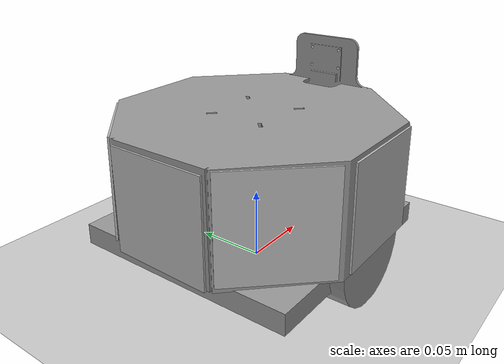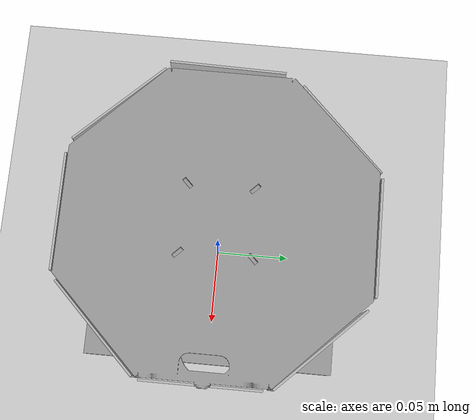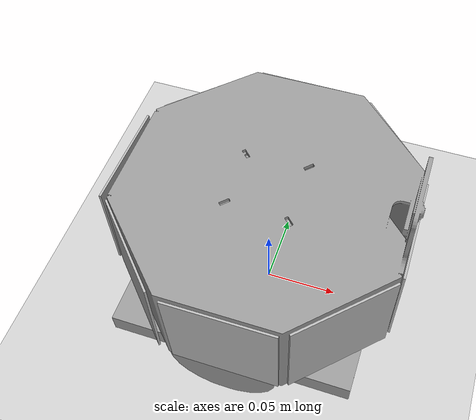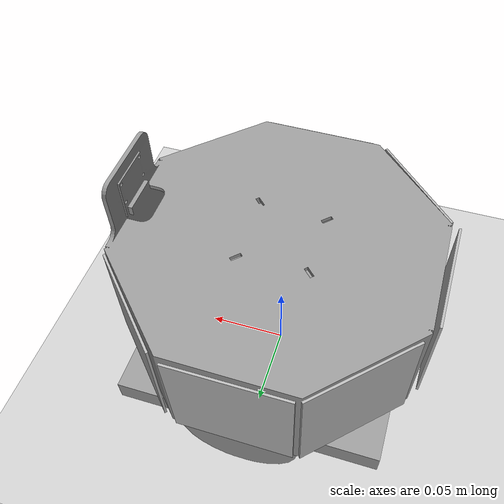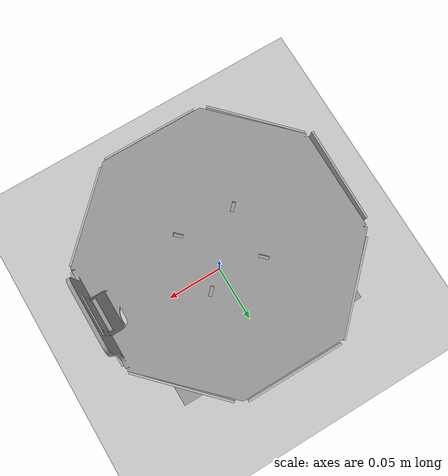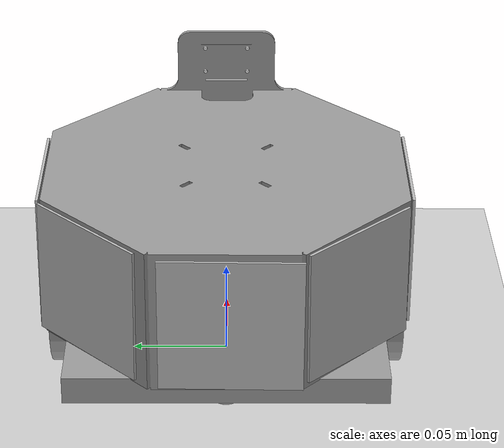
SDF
<?xml version="1.0"?>
<sdf version="1.4">
  <world name="default">

  	    <include>
			<uri>model://sun</uri>
		</include>

		<include>
			<uri>model://ground_plane</uri>
		</include>

		<include>
			<uri>model://Brook</uri>
			<pose>0 0 0 0 0 0</pose>
		</include>

		<gui fullscreen='0'>
      		<camera name='user_camera'>
        		<pose>4.927360 -4.376610 3.740080 0.000000 0.275643 2.356190</pose>
       			 <view_controller>orbit</view_controller>
     		 </camera>
   		 </gui>

  </world>
</sdf>

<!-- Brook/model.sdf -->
<sdf version='1.6'>
  <model name='Brook'>
    <link name='chassis'>
      <pose frame=''>-0.001509 0 0.027 0 -0 0</pose>
      <inertial>
        <mass>0.00251652</mass>
        <inertia>
          <ixx>6.31e-06</ixx>
          <ixy>0</ixy>
          <ixz>0</ixz>
          <iyy>0.00020976</iyy>
          <iyz>0</iyz>
          <izz>0.00021598</izz>
        </inertia>
        <pose frame=''>0 0 0 0 -0 0</pose>
      </inertial>
      <self_collide>0</self_collide>
      <kinematic>0</kinematic>
      <visual name='visual'>
        <pose frame=''>0 0 0 0 -0 0</pose>
        <geometry>
          <box>
            <size>0.164 0.164 0.014559</size>
          </box>
        </geometry>
        <material>
          <lighting>1</lighting>
          <script>
            <uri>file://media/materials/scripts/gazebo.material</uri>
            <name>Gazebo/Grey</name>
          </script>
          <ambient>0.3 0.3 0.3 1</ambient>
          <diffuse>0.7 0.7 0.7 1</diffuse>
          <specular>0.01 0.01 0.01 1</specular>
          <emissive>0 0 0 1</emissive>
          <shader type='vertex'>
            <normal_map>__default__</normal_map>
          </shader>
        </material>
        <cast_shadows>1</cast_shadows>
        <transparency>0</transparency>
      </visual>
      <collision name='collision'>
        <laser_retro>0</laser_retro>
        <max_contacts>10</max_contacts>
        <pose frame=''>0 0 0 0 -0 0</pose>
        <geometry>
          <box>
            <size>0.164 0.164 0.014559</size>
          </box>
        </geometry>
        <surface>
          <friction>
            <ode>
              <mu>1</mu>
              <mu2>1</mu2>
              <fdir1>0 0 0</fdir1>
              <slip1>0</slip1>
              <slip2>0</slip2>
            </ode>
            <torsional>
              <coefficient>1</coefficient>
              <patch_radius>0</patch_radius>
              <surface_radius>0</surface_radius>
              <use_patch_radius>1</use_patch_radius>
              <ode>
                <slip>0</slip>
              </ode>
            </torsional>
          </friction>
          <bounce>
            <restitution_coefficient>0</restitution_coefficient>
            <threshold>1e+06</threshold>
          </bounce>
          <contact>
            <collide_without_contact>0</collide_without_contact>
            <collide_without_contact_bitmask>1</collide_without_contact_bitmask>
            <collide_bitmask>1</collide_bitmask>
            <ode>
              <soft_cfm>0</soft_cfm>
              <soft_erp>0.2</soft_erp>
              <kp>1e+13</kp>
              <kd>1</kd>
              <max_vel>0.01</max_vel>
              <min_depth>0</min_depth>
            </ode>
            <bullet>
              <split_impulse>1</split_impulse>
              <split_impulse_penetration_threshold>-0.01</split_impulse_penetration_threshold>
              <soft_cfm>0</soft_cfm>
              <soft_erp>0.2</soft_erp>
              <kp>1e+13</kp>
              <kd>1</kd>
            </bullet>
          </contact>
        </surface>
      </collision>
    </link>
    <link name='33'>
      <pose frame=''>0.094422 -0.0013 0.037391 -2e-06 -0.011087 2e-06</pose>
      <inertial>
        <mass>0.00001</mass>
        <inertia>
          <ixx>0.166667</ixx>
          <ixy>0</ixy>
          <ixz>0</ixz>
          <iyy>0.166667</iyy>
          <iyz>0</iyz>
          <izz>0.166667</izz>
        </inertia>
        <pose frame=''>0 0 0 0 -0 0</pose>
      </inertial>
      <self_collide>0</self_collide>
      <kinematic>0</kinematic>
      <gravity>1</gravity>
      <visual name='visual'>
        <pose frame=''>0 0 0 0 -0 0</pose>
        <geometry>
          <mesh>
            <uri>model://brook_id_33/meshes/Brook_ID_33.dae</uri>
            <scale>0.142 0.142 0.142</scale>
          </mesh>
        </geometry>
        <cast_shadows>0</cast_shadows>
        <transparency>0</transparency>
        <material>
          <shader type='vertex'>
            <normal_map>__default__</normal_map>
          </shader>
          <emissive>0 0 0 1</emissive>
        </material>
      </visual>
      <collision name='collision'>
        <laser_retro>0</laser_retro>
        <max_contacts>10</max_contacts>
        <pose frame=''>0 0 0 0 -0 0</pose>
        <geometry>
          <mesh>
            <uri>/home/robot/catkin_ws/src/robot_description/models/brook_id_33/meshes/Brook_ID_33.dae</uri>
          </mesh>
        </geometry>
        <surface>
          <friction>
            <ode>
              <mu>0</mu>
              <mu2>0</mu2>
              <fdir1>0 0 0</fdir1>
              <slip1>0</slip1>
              <slip2>0</slip2>
            </ode>
            <torsional>
              <coefficient>1</coefficient>
              <patch_radius>0</patch_radius>
              <surface_radius>0</surface_radius>
              <use_patch_radius>1</use_patch_radius>
              <ode>
                <slip>0</slip>
              </ode>
            </torsional>
          </friction>
          <bounce>
            <restitution_coefficient>0</restitution_coefficient>
            <threshold>1e+06</threshold>
          </bounce>
          <contact>
            <collide_without_contact>0</collide_without_contact>
            <collide_without_contact_bitmask>1</collide_without_contact_bitmask>
            <collide_bitmask>1</collide_bitmask>
            <ode>
              <soft_cfm>0</soft_cfm>
              <soft_erp>0.2</soft_erp>
              <kp>1e+13</kp>
              <kd>1</kd>
              <max_vel>0.01</max_vel>
              <min_depth>0</min_depth>
            </ode>
            <bullet>
              <split_impulse>1</split_impulse>
              <split_impulse_penetration_threshold>-0.01</split_impulse_penetration_threshold>
              <soft_cfm>0</soft_cfm>
              <soft_erp>0.2</soft_erp>
              <kp>1e+13</kp>
              <kd>1</kd>
            </bullet>
          </contact>
        </surface>
      </collision>
    </link>
    <link name='34'>
      <pose frame=''>0.068398 0.065948 0.037501 -2e-06 -0.011087 0.770005</pose>
      <inertial>
        <mass>0.00001</mass>
        <inertia>
          <ixx>0.166667</ixx>
          <ixy>0</ixy>
          <ixz>0</ixz>
          <iyy>0.166667</iyy>
          <iyz>0</iyz>
          <izz>0.166667</izz>
        </inertia>
        <pose frame=''>0 0 0 0 -0 0</pose>
      </inertial>
      <self_collide>0</self_collide>
      <kinematic>0</kinematic>
      <gravity>1</gravity>
      <visual name='visual'>
        <pose frame=''>0 0 0 0 -0 0</pose>
        <geometry>
          <mesh>
            <uri>model://brook_id_34/meshes/Brook_ID_34.dae</uri>
            <scale>0.142 0.142 0.142</scale>
          </mesh>
        </geometry>
        <cast_shadows>0</cast_shadows>
        <transparency>0</transparency>
        <material>
          <shader type='vertex'>
            <normal_map>__default__</normal_map>
          </shader>
          <emissive>0 0 0 1</emissive>
        </material>
      </visual>
      <collision name='collision'>
        <laser_retro>0</laser_retro>
        <max_contacts>10</max_contacts>
        <pose frame=''>0 0 0 0 -0 0</pose>
        <geometry>
          <mesh>
            <uri>/home/robot/catkin_ws/src/robot_description/models/brook_id_34/meshes/Brook_ID_34.dae</uri>
          </mesh>
        </geometry>
        <surface>
          <friction>
            <ode>
              <mu>0</mu>
              <mu2>0</mu2>
              <fdir1>0 0 0</fdir1>
              <slip1>0</slip1>
              <slip2>0</slip2>
            </ode>
            <torsional>
              <coefficient>1</coefficient>
              <patch_radius>0</patch_radius>
              <surface_radius>0</surface_radius>
              <use_patch_radius>1</use_patch_radius>
              <ode>
                <slip>0</slip>
              </ode>
            </torsional>
          </friction>
          <bounce>
            <restitution_coefficient>0</restitution_coefficient>
            <threshold>1e+06</threshold>
          </bounce>
          <contact>
            <collide_without_contact>0</collide_without_contact>
            <collide_without_contact_bitmask>1</collide_without_contact_bitmask>
            <collide_bitmask>1</collide_bitmask>
            <ode>
              <soft_cfm>0</soft_cfm>
              <soft_erp>0.2</soft_erp>
              <kp>1e+13</kp>
              <kd>1</kd>
              <max_vel>0.01</max_vel>
              <min_depth>0</min_depth>
            </ode>
            <bullet>
              <split_impulse>1</split_impulse>
              <split_impulse_penetration_threshold>-0.01</split_impulse_penetration_threshold>
              <soft_cfm>0</soft_cfm>
              <soft_erp>0.2</soft_erp>
              <kp>1e+13</kp>
              <kd>1</kd>
            </bullet>
          </contact>
        </surface>
      </collision>
    </link>
    <link name='35'>
      <pose frame=''>-7.9e-05 0.095013 0.037527 -2e-06 -0.001087 1.57</pose>
      <inertial>
        <mass>0.00001</mass>
        <inertia>
          <ixx>0.166667</ixx>
          <ixy>0</ixy>
          <ixz>0</ixz>
          <iyy>0.166667</iyy>
          <iyz>0</iyz>
          <izz>0.166667</izz>
        </inertia>
        <pose frame=''>0 0 0 0 -0 0</pose>
      </inertial>
      <self_collide>0</self_collide>
      <kinematic>0</kinematic>
      <gravity>1</gravity>
      <visual name='visual'>
        <pose frame=''>0 0 0 0 -0 0</pose>
        <geometry>
          <mesh>
            <uri>model://brook_id_35/meshes/Brook_ID_35.dae</uri>
            <scale>0.142 0.142 0.142</scale>
          </mesh>
        </geometry>
        <cast_shadows>1</cast_shadows>
        <transparency>0</transparency>
        <material>
          <shader type='vertex'>
            <normal_map>__default__</normal_map>
          </shader>
          <emissive>0 0 0 1</emissive>
        </material>
      </visual>
      <collision name='collision'>
        <laser_retro>0</laser_retro>
        <max_contacts>10</max_contacts>
        <pose frame=''>0 0 0 0 -0 0</pose>
        <geometry>
          <mesh>
            <uri>/home/robot/catkin_ws/src/robot_description/models/brook_id_35/meshes/Brook_ID_35.dae</uri>
          </mesh>
        </geometry>
        <surface>
          <friction>
            <ode>
              <mu>0</mu>
              <mu2>0</mu2>
              <fdir1>0 0 0</fdir1>
              <slip1>0</slip1>
              <slip2>0</slip2>
            </ode>
            <torsional>
              <coefficient>1</coefficient>
              <patch_radius>0</patch_radius>
              <surface_radius>0</surface_radius>
              <use_patch_radius>1</use_patch_radius>
              <ode>
                <slip>0</slip>
              </ode>
            </torsional>
          </friction>
          <bounce>
            <restitution_coefficient>0</restitution_coefficient>
            <threshold>1e+06</threshold>
          </bounce>
          <contact>
            <collide_without_contact>0</collide_without_contact>
            <collide_without_contact_bitmask>1</collide_without_contact_bitmask>
            <collide_bitmask>1</collide_bitmask>
            <ode>
              <soft_cfm>0</soft_cfm>
              <soft_erp>0.2</soft_erp>
              <kp>1e+13</kp>
              <kd>1</kd>
              <max_vel>0.01</max_vel>
              <min_depth>0</min_depth>
            </ode>
            <bullet>
              <split_impulse>1</split_impulse>
              <split_impulse_penetration_threshold>-0.01</split_impulse_penetration_threshold>
              <soft_cfm>0</soft_cfm>
              <soft_erp>0.2</soft_erp>
              <kp>1e+13</kp>
              <kd>1</kd>
            </bullet>
          </contact>
        </surface>
      </collision>
    </link>
    <link name='36'>
      <pose frame=''>-0.064443 0.069678 0.037579 -2e-06 -0.011087 2.35</pose>
      <inertial>
        <mass>0.00001</mass>
        <inertia>
          <ixx>0.166667</ixx>
          <ixy>0</ixy>
          <ixz>0</ixz>
          <iyy>0.166667</iyy>
          <iyz>0</iyz>
          <izz>0.166667</izz>
        </inertia>
        <pose frame=''>0 0 0 0 -0 0</pose>
      </inertial>
      <self_collide>0</self_collide>
      <kinematic>0</kinematic>
      <gravity>1</gravity>
      <visual name='visual'>
        <pose frame=''>0 0 0 0 -0 0</pose>
        <geometry>
          <mesh>
            <uri>model://brook_id_36/meshes/Brook_ID_36.dae</uri>
            <scale>0.142 0.142 0.142</scale>
          </mesh>
        </geometry>
        <cast_shadows>0</cast_shadows>
        <transparency>0</transparency>
        <material>
          <shader type='vertex'>
            <normal_map>__default__</normal_map>
          </shader>
          <emissive>0 0 0 1</emissive>
        </material>
      </visual>
      <collision name='collision'>
        <laser_retro>0</laser_retro>
        <max_contacts>10</max_contacts>
        <pose frame=''>0 0 0 0 -0 0</pose>
        <geometry>
          <mesh>
            <uri>/home/robot/catkin_ws/src/robot_description/models/brook_id_36/meshes/Brook_ID_36.dae</uri>
          </mesh>
        </geometry>
        <surface>
          <friction>
            <ode>
              <mu>0</mu>
              <mu2>0</mu2>
              <fdir1>0 0 0</fdir1>
              <slip1>0</slip1>
              <slip2>0</slip2>
            </ode>
            <torsional>
              <coefficient>1</coefficient>
              <patch_radius>0</patch_radius>
              <surface_radius>0</surface_radius>
              <use_patch_radius>1</use_patch_radius>
              <ode>
                <slip>0</slip>
              </ode>
            </torsional>
          </friction>
          <bounce>
            <restitution_coefficient>0</restitution_coefficient>
            <threshold>1e+06</threshold>
          </bounce>
          <contact>
            <collide_without_contact>0</collide_without_contact>
            <collide_without_contact_bitmask>1</collide_without_contact_bitmask>
            <collide_bitmask>1</collide_bitmask>
            <ode>
              <soft_cfm>0</soft_cfm>
              <soft_erp>0.2</soft_erp>
              <kp>1e+13</kp>
              <kd>1</kd>
              <max_vel>0.01</max_vel>
              <min_depth>0</min_depth>
            </ode>
            <bullet>
              <split_impulse>1</split_impulse>
              <split_impulse_penetration_threshold>-0.01</split_impulse_penetration_threshold>
              <soft_cfm>0</soft_cfm>
              <soft_erp>0.2</soft_erp>
              <kp>1e+13</kp>
              <kd>1</kd>
            </bullet>
          </contact>
        </surface>
      </collision>
    </link>
	<link name='37'>
      <pose frame=''>-0.09693 -0.002225 0.03739 0 0 -0.02</pose>
      <inertial>
        <mass>0.00001</mass>
        <inertia>
          <ixx>0.166667</ixx>
          <ixy>0</ixy>
          <ixz>0</ixz>
          <iyy>0.166667</iyy>
          <iyz>0</iyz>
          <izz>0.166667</izz>
        </inertia>
        <pose frame=''>0 0 0 0 -0 0</pose>
      </inertial>
      <self_collide>0</self_collide>
      <kinematic>0</kinematic>
      <gravity>1</gravity>
      <visual name='visual'>
        <pose frame=''>0 0 0 0 -0 0</pose>
        <geometry>
          <mesh>
            <uri>model://brook_id_37/meshes/Brook_ID_37.dae</uri>
            <scale>0.142 0.142 0.142</scale>
          </mesh>
        </geometry>
        <cast_shadows>0</cast_shadows>
        <transparency>0</transparency>
        <material>
          <shader type='vertex'>
            <normal_map>__default__</normal_map>
          </shader>
          <emissive>0 0 0 1</emissive>
        </material>
      </visual>
      <collision name='collision'>
        <laser_retro>0</laser_retro>
        <max_contacts>10</max_contacts>
        <pose frame=''>0 0 0 0 -0 0</pose>
        <geometry>
          <mesh>
            <uri>/home/robot/catkin_ws/src/robot_description/models/brook_id_37/meshes/Brook_ID_37.dae</uri>
          </mesh>
        </geometry>
        <surface>
          <friction>
            <ode>
              <mu>0</mu>
              <mu2>0</mu2>
              <fdir1>0 0 0</fdir1>
              <slip1>0</slip1>
              <slip2>0</slip2>
            </ode>
            <torsional>
              <coefficient>1</coefficient>
              <patch_radius>0</patch_radius>
              <surface_radius>0</surface_radius>
              <use_patch_radius>1</use_patch_radius>
              <ode>
                <slip>0</slip>
              </ode>
            </torsional>
          </friction>
          <bounce>
            <restitution_coefficient>0</restitution_coefficient>
            <threshold>1e+06</threshold>
          </bounce>
          <contact>
            <collide_without_contact>0</collide_without_contact>
            <collide_without_contact_bitmask>1</collide_without_contact_bitmask>
            <collide_bitmask>1</collide_bitmask>
            <ode>
              <soft_cfm>0</soft_cfm>
              <soft_erp>0.2</soft_erp>
              <kp>1e+13</kp>
              <kd>1</kd>
              <max_vel>0.01</max_vel>
              <min_depth>0</min_depth>
            </ode>
            <bullet>
              <split_impulse>1</split_impulse>
              <split_impulse_penetration_threshold>-0.01</split_impulse_penetration_threshold>
              <soft_cfm>0</soft_cfm>
              <soft_erp>0.2</soft_erp>
              <kp>1e+13</kp>
              <kd>1</kd>
            </bullet>
          </contact>
        </surface>
      </collision>
    </link>
    <link name='38'>
      <pose frame=''>-0.068509 -0.065872 0.03847 -2e-06 -0.011087 -2.38</pose>
      <inertial>
        <mass>0.00001</mass>
        <inertia>
          <ixx>0.166667</ixx>
          <ixy>0</ixy>
          <ixz>0</ixz>
          <iyy>0.166667</iyy>
          <iyz>0</iyz>
          <izz>0.166667</izz>
        </inertia>
        <pose frame=''>0 0 0 0 -0 0</pose>
      </inertial>
      <self_collide>0</self_collide>
      <kinematic>0</kinematic>
      <gravity>1</gravity>
      <visual name='visual'>
        <pose frame=''>0 0 0 0 -0 0</pose>
        <geometry>
          <mesh>
            <uri>model://brook_id_38/meshes/Brook_ID_38.dae</uri>
            <scale>0.142 0.142 0.142</scale>
          </mesh>
        </geometry>
        <cast_shadows>0</cast_shadows>
        <transparency>0</transparency>
        <material>
          <shader type='vertex'>
            <normal_map>__default__</normal_map>
          </shader>
          <emissive>0 0 0 1</emissive>
        </material>
      </visual>
      <collision name='collision'>
        <laser_retro>0</laser_retro>
        <max_contacts>10</max_contacts>
        <pose frame=''>0 0 0 0 -0 0</pose>
        <geometry>
          <mesh>
            <uri>/home/robot/catkin_ws/src/robot_description/models/brook_id_38/meshes/Brook_ID_38.dae</uri>
          </mesh>
        </geometry>
        <surface>
          <friction>
            <ode>
              <mu>0</mu>
              <mu2>0</mu2>
              <fdir1>0 0 0</fdir1>
              <slip1>0</slip1>
              <slip2>0</slip2>
            </ode>
            <torsional>
              <coefficient>1</coefficient>
              <patch_radius>0</patch_radius>
              <surface_radius>0</surface_radius>
              <use_patch_radius>1</use_patch_radius>
              <ode>
                <slip>0</slip>
              </ode>
            </torsional>
          </friction>
          <bounce>
            <restitution_coefficient>0</restitution_coefficient>
            <threshold>1e+06</threshold>
          </bounce>
          <contact>
            <collide_without_contact>0</collide_without_contact>
            <collide_without_contact_bitmask>1</collide_without_contact_bitmask>
            <collide_bitmask>1</collide_bitmask>
            <ode>
              <soft_cfm>0</soft_cfm>
              <soft_erp>0.2</soft_erp>
              <kp>1e+13</kp>
              <kd>1</kd>
              <max_vel>0.01</max_vel>
              <min_depth>0</min_depth>
            </ode>
            <bullet>
              <split_impulse>1</split_impulse>
              <split_impulse_penetration_threshold>-0.01</split_impulse_penetration_threshold>
              <soft_cfm>0</soft_cfm>
              <soft_erp>0.2</soft_erp>
              <kp>1e+13</kp>
              <kd>1</kd>
            </bullet>
          </contact>
        </surface>
      </collision>
    </link>

    <link name='39'>
      <pose frame=''>0.001535 -0.093922 0.038003 0.009998 -0.001087 -1.57</pose>
      <inertial>
        <mass>0.00001</mass>
        <inertia>
          <ixx>0.166667</ixx>
          <ixy>0</ixy>
          <ixz>0</ixz>
          <iyy>0.166667</iyy>
          <iyz>0</iyz>
          <izz>0.166667</izz>
        </inertia>
        <pose frame=''>0 0 0 0 -0 0</pose>
      </inertial>
      <self_collide>0</self_collide>
      <kinematic>0</kinematic>
      <gravity>1</gravity>
      <visual name='visual'>
        <pose frame=''>0 0 0 0 -0 0</pose>
        <geometry>
          <mesh>
            <uri>model://brook_id_39/meshes/Brook_ID_39.dae</uri>
            <scale>0.142 0.142 0.142</scale>
          </mesh>
        </geometry>
        <cast_shadows>0</cast_shadows>
        <transparency>0</transparency>
        <material>
          <shader type='vertex'>
            <normal_map>__default__</normal_map>
          </shader>
          <emissive>0 0 0 1</emissive>
        </material>
      </visual>
      <collision name='collision'>
        <laser_retro>0</laser_retro>
        <max_contacts>10</max_contacts>
        <pose frame=''>0 0 0 0 -0 0</pose>
        <geometry>
          <mesh>
            <uri>/home/robot/catkin_ws/src/robot_description/models/brook_id_39/meshes/Brook_ID_39.dae</uri>
          </mesh>
        </geometry>
        <surface>
          <friction>
            <ode>
              <mu>0</mu>
              <mu2>0</mu2>
              <fdir1>0 0 0</fdir1>
              <slip1>0</slip1>
              <slip2>0</slip2>
            </ode>
            <torsional>
              <coefficient>1</coefficient>
              <patch_radius>0</patch_radius>
              <surface_radius>0</surface_radius>
              <use_patch_radius>1</use_patch_radius>
              <ode>
                <slip>0</slip>
              </ode>
            </torsional>
          </friction>
          <bounce>
            <restitution_coefficient>0</restitution_coefficient>
            <threshold>1e+06</threshold>
          </bounce>
          <contact>
            <collide_without_contact>0</collide_without_contact>
            <collide_without_contact_bitmask>1</collide_without_contact_bitmask>
            <collide_bitmask>1</collide_bitmask>
            <ode>
              <soft_cfm>0</soft_cfm>
              <soft_erp>0.2</soft_erp>
              <kp>1e+13</kp>
              <kd>1</kd>
              <max_vel>0.01</max_vel>
              <min_depth>0</min_depth>
            </ode>
            <bullet>
              <split_impulse>1</split_impulse>
              <split_impulse_penetration_threshold>-0.01</split_impulse_penetration_threshold>
              <soft_cfm>0</soft_cfm>
              <soft_erp>0.2</soft_erp>
              <kp>1e+13</kp>
              <kd>1</kd>
            </bullet>
          </contact>
        </surface>
      </collision>
    </link>
    <link name='40'>
      <pose frame=''>0.067393 -0.066101 0.037768 -2e-06 -0.011087 -0.790002</pose>
      <inertial>
        <mass>0.00001</mass>
        <inertia>
          <ixx>0.166667</ixx>
          <ixy>0</ixy>
          <ixz>0</ixz>
          <iyy>0.166667</iyy>
          <iyz>0</iyz>
          <izz>0.166667</izz>
        </inertia>
        <pose frame=''>0 0 0 0 -0 0</pose>
      </inertial>
      <self_collide>0</self_collide>
      <kinematic>0</kinematic>
      <gravity>1</gravity>
      <visual name='visual'>
        <pose frame=''>0 0 0 0 -0 0</pose>
        <geometry>
          <mesh>
            <uri>model://brook_id_40/meshes/Brook_ID_40.dae</uri>
            <scale>0.142 0.142 0.142</scale>
          </mesh>
        </geometry>
        <cast_shadows>0</cast_shadows>
        <transparency>0</transparency>
        <material>
          <shader type='vertex'>
            <normal_map>__default__</normal_map>
          </shader>
          <emissive>0 0 0 1</emissive>
        </material>
      </visual>
      <collision name='collision'>
        <laser_retro>0</laser_retro>
        <max_contacts>10</max_contacts>
        <pose frame=''>0 0 0 0 -0 0</pose>
        <geometry>
          <mesh>
            <uri>/home/robot/catkin_ws/src/robot_description/models/brook_id_40/meshes/Brook_ID_40.dae</uri>
          </mesh>
        </geometry>
        <surface>
          <friction>
            <ode>
              <mu>0</mu>
              <mu2>0</mu2>
              <fdir1>0 0 0</fdir1>
              <slip1>0</slip1>
              <slip2>0</slip2>
            </ode>
            <torsional>
              <coefficient>1</coefficient>
              <patch_radius>0</patch_radius>
              <surface_radius>0</surface_radius>
              <use_patch_radius>1</use_patch_radius>
              <ode>
                <slip>0</slip>
              </ode>
            </torsional>
          </friction>
          <bounce>
            <restitution_coefficient>0</restitution_coefficient>
            <threshold>1e+06</threshold>
          </bounce>
          <contact>
            <collide_without_contact>0</collide_without_contact>
            <collide_without_contact_bitmask>1</collide_without_contact_bitmask>
            <collide_bitmask>1</collide_bitmask>
            <ode>
              <soft_cfm>0</soft_cfm>
              <soft_erp>0.2</soft_erp>
              <kp>1e+13</kp>
              <kd>1</kd>
              <max_vel>0.01</max_vel>
              <min_depth>0</min_depth>
            </ode>
            <bullet>
              <split_impulse>1</split_impulse>
              <split_impulse_penetration_threshold>-0.01</split_impulse_penetration_threshold>
              <soft_cfm>0</soft_cfm>
              <soft_erp>0.2</soft_erp>
              <kp>1e+13</kp>
              <kd>1</kd>
            </bullet>
          </contact>
        </surface>
      </collision>
    </link>
    <link name='back_caster'>
      <pose frame=''>0.056523 0 0.012 0 -0 0</pose>
      <inertial>
        <mass>1.436e-05</mass>
        <inertia>
          <ixx>0</ixx>
          <ixy>0</ixy>
          <ixz>0</ixz>
          <iyy>0</iyy>
          <iyz>0</iyz>
          <izz>0</izz>
        </inertia>
        <pose frame=''>0 0 0 0 -0 0</pose>
      </inertial>
      <self_collide>0</self_collide>
      <kinematic>0</kinematic>
      <visual name='visual'>
        <pose frame=''>0 0 0 0 -0 0</pose>
        <geometry>
          <sphere>
            <radius>0.0121514</radius>
          </sphere>
        </geometry>
        <material>
          <lighting>1</lighting>
          <script>
            <uri>file://media/materials/scripts/gazebo.material</uri>
            <name>Gazebo/Grey</name>
          </script>
          <ambient>0.3 0.3 0.3 1</ambient>
          <diffuse>0.7 0.7 0.7 1</diffuse>
          <specular>0.01 0.01 0.01 1</specular>
          <emissive>0 0 0 1</emissive>
          <shader type='vertex'>
            <normal_map>__default__</normal_map>
          </shader>
        </material>
        <cast_shadows>1</cast_shadows>
        <transparency>0</transparency>
      </visual>
      <collision name='collision'>
        <laser_retro>0</laser_retro>
        <max_contacts>10</max_contacts>
        <pose frame=''>0 0 0 0 -0 0</pose>
        <geometry>
          <sphere>
            <radius>0.012151</radius>
          </sphere>
        </geometry>
        <surface>
          <friction>
            <ode>
              <mu>1</mu>
              <mu2>1</mu2>
              <fdir1>0 0 0</fdir1>
              <slip1>0</slip1>
              <slip2>0</slip2>
            </ode>
            <torsional>
              <coefficient>1</coefficient>
              <patch_radius>0</patch_radius>
              <surface_radius>0</surface_radius>
              <use_patch_radius>1</use_patch_radius>
              <ode>
                <slip>0</slip>
              </ode>
            </torsional>
          </friction>
          <bounce>
            <restitution_coefficient>0</restitution_coefficient>
            <threshold>1e+06</threshold>
          </bounce>
          <contact>
            <collide_without_contact>0</collide_without_contact>
            <collide_without_contact_bitmask>1</collide_without_contact_bitmask>
            <collide_bitmask>1</collide_bitmask>
            <ode>
              <soft_cfm>0</soft_cfm>
              <soft_erp>0.2</soft_erp>
              <kp>1e+13</kp>
              <kd>1</kd>
              <max_vel>0.01</max_vel>
              <min_depth>0</min_depth>
            </ode>
            <bullet>
              <split_impulse>1</split_impulse>
              <split_impulse_penetration_threshold>-0.01</split_impulse_penetration_threshold>
              <soft_cfm>0</soft_cfm>
              <soft_erp>0.2</soft_erp>
              <kp>1e+13</kp>
              <kd>1</kd>
            </bullet>
          </contact>
        </surface>
      </collision>
    </link>
    <link name='follower_hat'>
      <pose frame=''>0.01141 0.016667 0.069741 1e-05 -0.009639 -0.00122</pose>
      <inertial>
        <mass>0.00151652</mass>
        <inertia>
          <ixx>0.166667</ixx>
          <ixy>0</ixy>
          <ixz>0</ixz>
          <iyy>0.166667</iyy>
          <iyz>0</iyz>
          <izz>0.166667</izz>
        </inertia>
        <pose frame=''>0 0 0 0 -0 0</pose>
      </inertial>
      <self_collide>0</self_collide>
      <kinematic>0</kinematic>
      <gravity>1</gravity>
      <visual name='visual'>
        <pose frame=''>0 0 0 0 -0 0</pose>
        <geometry>
          <mesh>
            <uri>/home/robot/catkin_ws/src/robot_description/meshes/follower-tagboard.stl</uri>
          </mesh>
        </geometry>
        <material>
          <lighting>1</lighting>
          <script>
            <uri>file://media/materials/scripts/gazebo.material</uri>
            <name>Gazebo/Grey</name>
          </script>
          <ambient>0.3 0.3 0.3 1</ambient>
          <diffuse>0.7 0.7 0.7 1</diffuse>
          <specular>0.01 0.01 0.01 1</specular>
          <emissive>0 0 0 1</emissive>
          <shader type='vertex'>
            <normal_map>__default__</normal_map>
          </shader>
        </material>
        <cast_shadows>1</cast_shadows>
        <transparency>0</transparency>
      </visual>
      <collision name='collision'>
        <laser_retro>0</laser_retro>
        <max_contacts>10</max_contacts>
        <pose frame=''>0 0 0 0 -0 0</pose>
        <geometry>
          <mesh>
            <uri>/home/robot/catkin_ws/src/robot_description/meshes/follower-tagboard_.stl</uri>
          </mesh>
        </geometry>
        <surface>
          <friction>
            <ode>
              <mu>1</mu>
              <mu2>1</mu2>
              <fdir1>0 0 0</fdir1>
              <slip1>0</slip1>
              <slip2>0</slip2>
            </ode>
            <torsional>
              <coefficient>1</coefficient>
              <patch_radius>0</patch_radius>
              <surface_radius>0</surface_radius>
              <use_patch_radius>1</use_patch_radius>
              <ode>
                <slip>0</slip>
              </ode>
            </torsional>
          </friction>
          <bounce>
            <restitution_coefficient>0</restitution_coefficient>
            <threshold>1e+06</threshold>
          </bounce>
          <contact>
            <collide_without_contact>0</collide_without_contact>
            <collide_without_contact_bitmask>1</collide_without_contact_bitmask>
            <collide_bitmask>1</collide_bitmask>
            <ode>
              <soft_cfm>0</soft_cfm>
              <soft_erp>0.2</soft_erp>
              <kp>1e+13</kp>
              <kd>1</kd>
              <max_vel>0.01</max_vel>
              <min_depth>0</min_depth>
            </ode>
            <bullet>
              <split_impulse>1</split_impulse>
              <split_impulse_penetration_threshold>-0.01</split_impulse_penetration_threshold>
              <soft_cfm>0</soft_cfm>
              <soft_erp>0.2</soft_erp>
              <kp>1e+13</kp>
              <kd>1</kd>
            </bullet>
          </contact>
        </surface>
      </collision>
    </link>
    <link name='front_caster'>
      <pose frame=''>-0.051998 -0 0.012 0 -0 0</pose>
      <inertial>
        <mass>1.436e-05</mass>
        <inertia>
          <ixx>0</ixx>
          <ixy>0</ixy>
          <ixz>0</ixz>
          <iyy>0</iyy>
          <iyz>0</iyz>
          <izz>0</izz>
        </inertia>
        <pose frame=''>0 0 0 0 -0 0</pose>
      </inertial>
      <self_collide>0</self_collide>
      <kinematic>0</kinematic>
      <visual name='visual'>
        <pose frame=''>0 0 0 0 -0 0</pose>
        <geometry>
          <sphere>
            <radius>0.0121514</radius>
          </sphere>
        </geometry>
        <material>
          <lighting>1</lighting>
          <script>
            <uri>file://media/materials/scripts/gazebo.material</uri>
            <name>Gazebo/Grey</name>
          </script>
          <ambient>0.3 0.3 0.3 1</ambient>
          <diffuse>0.7 0.7 0.7 1</diffuse>
          <specular>0.01 0.01 0.01 1</specular>
          <emissive>0 0 0 1</emissive>
          <shader type='vertex'>
            <normal_map>__default__</normal_map>
          </shader>
        </material>
        <cast_shadows>1</cast_shadows>
        <transparency>0</transparency>
      </visual>
      <collision name='collision'>
        <laser_retro>0</laser_retro>
        <max_contacts>10</max_contacts>
        <pose frame=''>0 0 0 0 -0 0</pose>
        <geometry>
          <sphere>
            <radius>0.012151</radius>
          </sphere>
        </geometry>
        <surface>
          <friction>
            <ode>
              <mu>1</mu>
              <mu2>1</mu2>
              <fdir1>0 0 0</fdir1>
              <slip1>0</slip1>
              <slip2>0</slip2>
            </ode>
            <torsional>
              <coefficient>1</coefficient>
              <patch_radius>0</patch_radius>
              <surface_radius>0</surface_radius>
              <use_patch_radius>1</use_patch_radius>
              <ode>
                <slip>0</slip>
              </ode>
            </torsional>
          </friction>
          <bounce>
            <restitution_coefficient>0</restitution_coefficient>
            <threshold>1e+06</threshold>
          </bounce>
          <contact>
            <collide_without_contact>0</collide_without_contact>
            <collide_without_contact_bitmask>1</collide_without_contact_bitmask>
            <collide_bitmask>1</collide_bitmask>
            <ode>
              <soft_cfm>0</soft_cfm>
              <soft_erp>0.2</soft_erp>
              <kp>1e+13</kp>
              <kd>1</kd>
              <max_vel>0.01</max_vel>
              <min_depth>0</min_depth>
            </ode>
            <bullet>
              <split_impulse>1</split_impulse>
              <split_impulse_penetration_threshold>-0.01</split_impulse_penetration_threshold>
              <soft_cfm>0</soft_cfm>
              <soft_erp>0.2</soft_erp>
              <kp>1e+13</kp>
              <kd>1</kd>
            </bullet>
          </contact>
        </surface>
      </collision>
    </link>
    <link name='left_wheel'>
      <pose frame=''>-0.001509 0.08377 0.035 1.57 -0 0</pose>
      <inertial>
        <mass>8.439e-05</mass>
        <inertia>
          <ixx>3e-08</ixx>
          <ixy>0</ixy>
          <ixz>0</ixz>
          <iyy>3e-08</iyy>
          <iyz>0</iyz>
          <izz>5e-08</izz>
        </inertia>
        <pose frame=''>0 0 0 0 -0 0</pose>
      </inertial>
      <self_collide>0</self_collide>
      <kinematic>0</kinematic>
      <visual name='visual'>
        <pose frame=''>0 0 0 0 -0 0</pose>
        <geometry>
          <cylinder>
            <radius>0.0358674</radius>
            <length>0.0164037</length>
          </cylinder>
        </geometry>
        <material>
          <lighting>1</lighting>
          <script>
            <uri>file://media/materials/scripts/gazebo.material</uri>
            <name>Gazebo/Grey</name>
          </script>
          <ambient>0.3 0.3 0.3 1</ambient>
          <diffuse>0.7 0.7 0.7 1</diffuse>
          <specular>0.01 0.01 0.01 1</specular>
          <emissive>0 0 0 1</emissive>
          <shader type='vertex'>
            <normal_map>__default__</normal_map>
          </shader>
        </material>
        <cast_shadows>1</cast_shadows>
        <transparency>0</transparency>
      </visual>
      <collision name='collision'>
        <laser_retro>0</laser_retro>
        <max_contacts>10</max_contacts>
        <pose frame=''>0 0 0 0 -0 0</pose>
        <geometry>
          <cylinder>
            <radius>0.035867</radius>
            <length>0.016404</length>
          </cylinder>
        </geometry>
        <surface>
          <friction>
            <ode>
              <mu>1</mu>
              <mu2>1</mu2>
              <fdir1>0 0 0</fdir1>
              <slip1>0</slip1>
              <slip2>0</slip2>
            </ode>
            <torsional>
              <coefficient>1</coefficient>
              <patch_radius>0</patch_radius>
              <surface_radius>0</surface_radius>
              <use_patch_radius>1</use_patch_radius>
              <ode>
                <slip>0</slip>
              </ode>
            </torsional>
          </friction>
          <bounce>
            <restitution_coefficient>0</restitution_coefficient>
            <threshold>1e+06</threshold>
          </bounce>
          <contact>
            <collide_without_contact>0</collide_without_contact>
            <collide_without_contact_bitmask>1</collide_without_contact_bitmask>
            <collide_bitmask>1</collide_bitmask>
            <ode>
              <soft_cfm>0</soft_cfm>
              <soft_erp>0.2</soft_erp>
              <kp>1e+13</kp>
              <kd>1</kd>
              <max_vel>0.01</max_vel>
              <min_depth>0</min_depth>
            </ode>
            <bullet>
              <split_impulse>1</split_impulse>
              <split_impulse_penetration_threshold>-0.01</split_impulse_penetration_threshold>
              <soft_cfm>0</soft_cfm>
              <soft_erp>0.2</soft_erp>
              <kp>1e+13</kp>
              <kd>1</kd>
            </bullet>
          </contact>
        </surface>
      </collision>
    </link>
    <link name='right_wheel'>
      <pose frame=''>-0.001509 -0.08377 0.035 1.57 0 3.14</pose>
      <inertial>
        <mass>8.439e-05</mass>
        <inertia>
          <ixx>3e-08</ixx>
          <ixy>0</ixy>
          <ixz>0</ixz>
          <iyy>3e-08</iyy>
          <iyz>0</iyz>
          <izz>5e-08</izz>
        </inertia>
        <pose frame=''>0 0 0 0 -0 0</pose>
      </inertial>
      <self_collide>0</self_collide>
      <kinematic>0</kinematic>
      <visual name='visual'>
        <pose frame=''>0 0 0 0 -0 0</pose>
        <geometry>
          <cylinder>
            <radius>0.0358674</radius>
            <length>0.0164037</length>
          </cylinder>
        </geometry>
        <material>
          <lighting>1</lighting>
          <script>
            <uri>file://media/materials/scripts/gazebo.material</uri>
            <name>Gazebo/Grey</name>
          </script>
          <ambient>0.3 0.3 0.3 1</ambient>
          <diffuse>0.7 0.7 0.7 1</diffuse>
          <specular>0.01 0.01 0.01 1</specular>
          <emissive>0 0 0 1</emissive>
          <shader type='vertex'>
            <normal_map>__default__</normal_map>
          </shader>
        </material>
        <cast_shadows>1</cast_shadows>
        <transparency>0</transparency>
      </visual>
      <collision name='collision'>
        <laser_retro>0</laser_retro>
        <max_contacts>10</max_contacts>
        <pose frame=''>0 0 0 0 -0 0</pose>
        <geometry>
          <cylinder>
            <radius>0.035867</radius>
            <length>0.016404</length>
          </cylinder>
        </geometry>
        <surface>
          <friction>
            <ode>
              <mu>1</mu>
              <mu2>1</mu2>
              <fdir1>0 0 0</fdir1>
              <slip1>0</slip1>
              <slip2>0</slip2>
            </ode>
            <torsional>
              <coefficient>1</coefficient>
              <patch_radius>0</patch_radius>
              <surface_radius>0</surface_radius>
              <use_patch_radius>1</use_patch_radius>
              <ode>
                <slip>0</slip>
              </ode>
            </torsional>
          </friction>
          <bounce>
            <restitution_coefficient>0</restitution_coefficient>
            <threshold>1e+06</threshold>
          </bounce>
          <contact>
            <collide_without_contact>0</collide_without_contact>
            <collide_without_contact_bitmask>1</collide_without_contact_bitmask>
            <collide_bitmask>1</collide_bitmask>
            <ode>
              <soft_cfm>0</soft_cfm>
              <soft_erp>0.2</soft_erp>
              <kp>1e+13</kp>
              <kd>1</kd>
              <max_vel>0.01</max_vel>
              <min_depth>0</min_depth>
            </ode>
            <bullet>
              <split_impulse>1</split_impulse>
              <split_impulse_penetration_threshold>-0.01</split_impulse_penetration_threshold>
              <soft_cfm>0</soft_cfm>
              <soft_erp>0.2</soft_erp>
              <kp>1e+13</kp>
              <kd>1</kd>
            </bullet>
          </contact>
        </surface>
      </collision>
    </link>
    <joint name='back_caster_joint' type='ball'>
      <parent>chassis</parent>
      <child>back_caster</child>
      <pose frame=''>0 0 0 0 -0 0</pose>
      <physics>
        <ode>
          <limit>
            <cfm>0</cfm>
            <erp>0.2</erp>
          </limit>
          <suspension>
            <cfm>0</cfm>
            <erp>0.2</erp>
          </suspension>
        </ode>
      </physics>
    </joint>

    <joint name='follower_hat_JOINT_3' type='fixed'>
      <parent>follower_hat</parent>
      <child>33</child>
      <pose frame=''>0 0 0 0 -0 0</pose>
      <physics>
        <ode>
          <limit>
            <cfm>0</cfm>
            <erp>0.2</erp>
          </limit>
          <suspension>
            <cfm>0</cfm>
            <erp>0.2</erp>
          </suspension>
        </ode>
      </physics>
    </joint>
    <joint name='follower_hat_JOINT_4' type='fixed'>
      <parent>follower_hat</parent>
      <child>34</child>
      <pose frame=''>0 0 0 0 -0 0</pose>
      <physics>
        <ode>
          <limit>
            <cfm>0</cfm>
            <erp>0.2</erp>
          </limit>
          <suspension>
            <cfm>0</cfm>
            <erp>0.2</erp>
          </suspension>
        </ode>
      </physics>
    </joint>
    <joint name='follower_hat_JOINT_11' type='fixed'>
      <parent>follower_hat</parent>
      <child>35</child>
      <pose frame=''>0 0 0 0 -0 0</pose>
      <physics>
        <ode>
          <limit>
            <cfm>0</cfm>
            <erp>0.2</erp>
          </limit>
          <suspension>
            <cfm>0</cfm>
            <erp>0.2</erp>
          </suspension>
        </ode>
      </physics>
    </joint>
    <joint name='follower_hat_JOINT_6' type='fixed'>
      <parent>follower_hat</parent>
      <child>36</child>
      <pose frame=''>0 0 0 0 -0 0</pose>
      <physics>
        <ode>
          <limit>
            <cfm>0</cfm>
            <erp>0.2</erp>
          </limit>
          <suspension>
            <cfm>0</cfm>
            <erp>0.2</erp>
          </suspension>
        </ode>
      </physics>
    </joint>
    <joint name='follower_hat_JOINT_7' type='fixed'>
      <parent>follower_hat</parent>
      <child>37</child>
      <pose frame=''>0 0 0 0 -0 0</pose>
      <physics>
        <ode>
          <limit>
            <cfm>0</cfm>
            <erp>0.2</erp>
          </limit>
          <suspension>
            <cfm>0</cfm>
            <erp>0.2</erp>
          </suspension>
        </ode>
      </physics>
    </joint>
    <joint name='follower_hat_JOINT_8' type='fixed'>
      <parent>follower_hat</parent>
      <child>38</child>
      <pose frame=''>0 0 0 0 -0 0</pose>
      <physics>
        <ode>
          <limit>
            <cfm>0</cfm>
            <erp>0.2</erp>
          </limit>
          <suspension>
            <cfm>0</cfm>
            <erp>0.2</erp>
          </suspension>
        </ode>
      </physics>
    </joint>
    <joint name='follower_hat_JOINT_9' type='fixed'>
      <parent>follower_hat</parent>
      <child>39</child>
      <pose frame=''>0 0 0 0 -0 0</pose>
      <physics>
        <ode>
          <limit>
            <cfm>0</cfm>
            <erp>0.2</erp>
          </limit>
          <suspension>
            <cfm>0</cfm>
            <erp>0.2</erp>
          </suspension>
        </ode>
      </physics>
    </joint>

    <joint name='follower_hat_JOINT_10' type='fixed'>
      <parent>follower_hat</parent>
      <child>40</child>
      <pose frame=''>0 0 0 0 -0 0</pose>
      <physics>
        <ode>
          <limit>
            <cfm>0</cfm>
            <erp>0.2</erp>
          </limit>
          <suspension>
            <cfm>0</cfm>
            <erp>0.2</erp>
          </suspension>
        </ode>
      </physics>
    </joint>

    <joint name='front_caster_joint' type='ball'>
      <parent>chassis</parent>
      <child>front_caster</child>
      <pose frame=''>0 0 0 0 -0 0</pose>
      <physics>
        <ode>
          <limit>
            <cfm>0</cfm>
            <erp>0.2</erp>
          </limit>
          <suspension>
            <cfm>0</cfm>
            <erp>0.2</erp>
          </suspension>
        </ode>
      </physics>
    </joint>
    <joint name='hat_joint' type='fixed'>
      <parent>chassis</parent>
      <child>follower_hat</child>
      <pose frame=''>0 0 0 0 -0 0</pose>
      <physics>
        <ode>
          <limit>
            <cfm>0</cfm>
            <erp>0.2</erp>
          </limit>
          <suspension>
            <cfm>0</cfm>
            <erp>0.2</erp>
          </suspension>
        </ode>
      </physics>
    </joint>
    <joint name='left_wheel_joint' type='revolute'>
      <parent>chassis</parent>
      <child>left_wheel</child>
      <pose frame=''>0 0 0 0 -0 0</pose>
      <axis>
        <xyz>0 0 1</xyz>
        <use_parent_model_frame>0</use_parent_model_frame>
        <limit>
          <lower>-1.79769e+308</lower>
          <upper>1.79769e+308</upper>
          <effort>-1</effort>
          <velocity>-1</velocity>
        </limit>
        <dynamics>
          <spring_reference>0</spring_reference>
          <spring_stiffness>0</spring_stiffness>
          <damping>0</damping>
          <friction>0</friction>
        </dynamics>
      </axis>
      <physics>
        <ode>
          <limit>
            <cfm>0</cfm>
            <erp>0.2</erp>
          </limit>
          <suspension>
            <cfm>0</cfm>
            <erp>0.2</erp>
          </suspension>
        </ode>
      </physics>
    </joint>
    <joint name='right_wheel_joint' type='revolute'>
      <parent>chassis</parent>
      <child>right_wheel</child>
      <pose frame=''>0 0 0 0 -0 0</pose>
      <axis>
        <xyz>0 0 1</xyz>
        <use_parent_model_frame>0</use_parent_model_frame>
        <limit>
          <lower>-1.79769e+308</lower>
          <upper>1.79769e+308</upper>
          <effort>-1</effort>
          <velocity>-1</velocity>
        </limit>
        <dynamics>
          <spring_reference>0</spring_reference>
          <spring_stiffness>0</spring_stiffness>
          <damping>0</damping>
          <friction>0</friction>
        </dynamics>
      </axis>
      <physics>
        <ode>
          <limit>
            <cfm>0</cfm>
            <erp>0.2</erp>
          </limit>
          <suspension>
            <cfm>0</cfm>
            <erp>0.2</erp>
          </suspension>
        </ode>
      </physics>
    </joint>
    <static>0</static>
    <allow_auto_disable>1</allow_auto_disable>
  </model>
</sdf>
